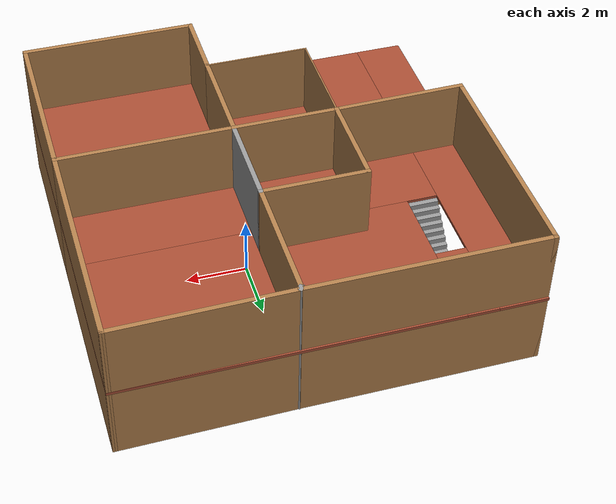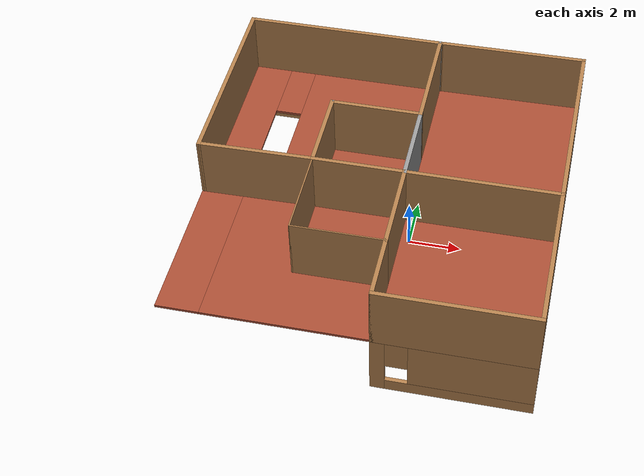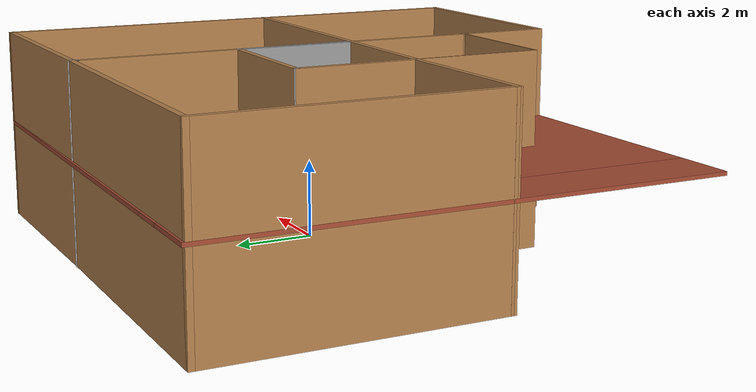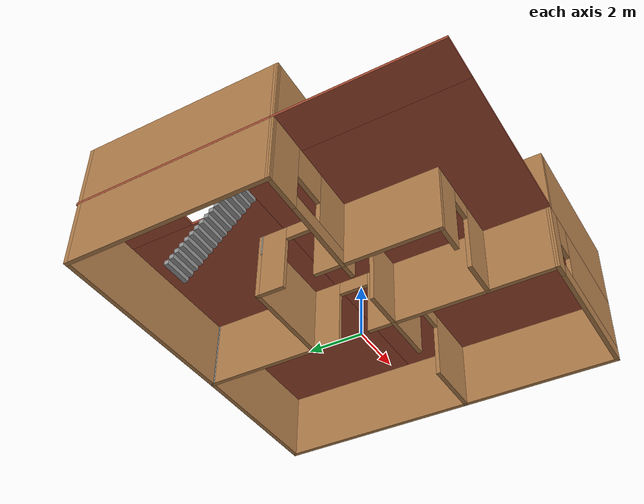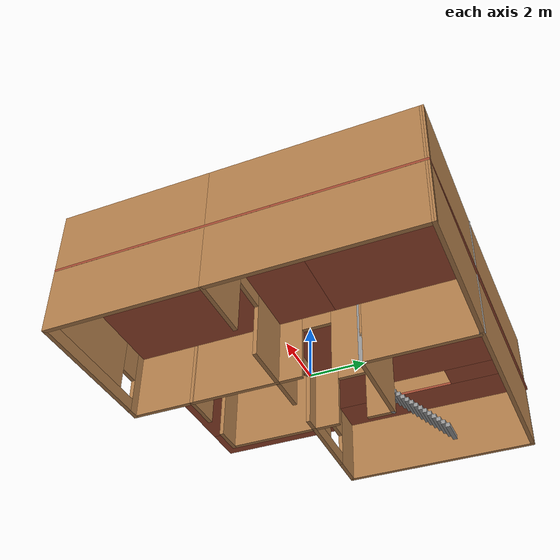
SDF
<?xml version='1.0'?>
<sdf version='1.7'>
  <model name='woodhouse'>
    <pose>-0.959793 -0.394525 0 0 -0 0</pose>
    <link name='Floor_0'>
      <pose>0.000114 -3e-06 2.5 0 -0 0</pose>
      <visual name='Floor_0_Visual_0'>
        <pose>-5.86624 0 0.05 0 -0 0</pose>
        <geometry>
          <box>
            <size>1.5695 13.2009 0.1</size>
          </box>
        </geometry>
        <material>
          <script>
            <uri>file://media/materials/scripts/gazebo.material</uri>
            <name>Gazebo/Bricks</name>
          </script>
          <ambient>1 1 1 1</ambient>
        </material>
        <meta>
          <layer>1</layer>
        </meta>
      </visual>
      <collision name='Floor_0_Collision_0'>
        <geometry>
          <box>
            <size>1.5695 13.2009 0.1</size>
          </box>
        </geometry>
        <pose>-5.86624 0 0.05 0 -0 0</pose>
      </collision>
      <visual name='Floor_0_Visual_1'>
        <pose>0.78475 -2.5953 0.05 0 -0 0</pose>
        <geometry>
          <box>
            <size>11.7325 8.01025 0.1</size>
          </box>
        </geometry>
        <material>
          <script>
            <uri>file://media/materials/scripts/gazebo.material</uri>
            <name>Gazebo/Bricks</name>
          </script>
          <ambient>1 1 1 1</ambient>
        </material>
        <meta>
          <layer>1</layer>
        </meta>
      </visual>
      <collision name='Floor_0_Collision_1'>
        <geometry>
          <box>
            <size>11.7325 8.01025 0.1</size>
          </box>
        </geometry>
        <pose>0.78475 -2.5953 0.05 0 -0 0</pose>
      </collision>
      <visual name='Floor_0_Visual_2'>
        <pose>1.28475 4.00513 0.05 0 -0 0</pose>
        <geometry>
          <box>
            <size>10.7325 5.1906 0.1</size>
          </box>
        </geometry>
        <material>
          <script>
            <uri>file://media/materials/scripts/gazebo.material</uri>
            <name>Gazebo/Bricks</name>
          </script>
          <ambient>1 1 1 1</ambient>
        </material>
        <meta>
          <layer>1</layer>
        </meta>
      </visual>
      <collision name='Floor_0_Collision_2'>
        <geometry>
          <box>
            <size>10.7325 5.1906 0.1</size>
          </box>
        </geometry>
        <pose>1.28475 4.00513 0.05 0 -0 0</pose>
      </collision>
      <visual name='Floor_0_Visual_3'>
        <pose>-4.58149 5.25513 0.05 0 -0 0</pose>
        <geometry>
          <box>
            <size>1 2.6906 0.1</size>
          </box>
        </geometry>
        <material>
          <script>
            <uri>file://media/materials/scripts/gazebo.material</uri>
            <name>Gazebo/Bricks</name>
          </script>
          <ambient>1 1 1 1</ambient>
        </material>
        <meta>
          <layer>1</layer>
        </meta>
      </visual>
      <collision name='Floor_0_Collision_3'>
        <geometry>
          <box>
            <size>1 2.6906 0.1</size>
          </box>
        </geometry>
        <pose>-4.58149 5.25513 0.05 0 -0 0</pose>
      </collision>
    </link>
    <link name='Stairs_0'>
      <visual name='Stairs_0_Visual_0'>
        <pose>-4.58138 3.82649 0.083333 0 -0 0</pose>
        <geometry>
          <box>
            <size>1 0.166667 0.166667</size>
          </box>
        </geometry>
        <material>
          <script>
            <uri>file://media/materials/scripts/gazebo.material</uri>
            <name>Gazebo/Grey</name>
          </script>
          <ambient>1 1 1 1</ambient>
        </material>
        <meta>
          <layer>0</layer>
        </meta>
      </visual>
      <collision name='Stairs_0_Collision_0'>
        <geometry>
          <box>
            <size>1 0.166667 0.166667</size>
          </box>
        </geometry>
        <pose>-4.58138 3.82649 0.083333 0 -0 0</pose>
      </collision>
      <visual name='Stairs_0_Visual_1'>
        <pose>-4.58138 3.65983 0.25 0 -0 0</pose>
        <geometry>
          <box>
            <size>1 0.166667 0.166667</size>
          </box>
        </geometry>
        <material>
          <script>
            <uri>file://media/materials/scripts/gazebo.material</uri>
            <name>Gazebo/Grey</name>
          </script>
          <ambient>1 1 1 1</ambient>
        </material>
        <meta>
          <layer>0</layer>
        </meta>
      </visual>
      <collision name='Stairs_0_Collision_1'>
        <geometry>
          <box>
            <size>1 0.166667 0.166667</size>
          </box>
        </geometry>
        <pose>-4.58138 3.65983 0.25 0 -0 0</pose>
      </collision>
      <visual name='Stairs_0_Visual_2'>
        <pose>-4.58138 3.49316 0.416667 0 -0 0</pose>
        <geometry>
          <box>
            <size>1 0.166667 0.166667</size>
          </box>
        </geometry>
        <material>
          <script>
            <uri>file://media/materials/scripts/gazebo.material</uri>
            <name>Gazebo/Grey</name>
          </script>
          <ambient>1 1 1 1</ambient>
        </material>
        <meta>
          <layer>0</layer>
        </meta>
      </visual>
      <collision name='Stairs_0_Collision_2'>
        <geometry>
          <box>
            <size>1 0.166667 0.166667</size>
          </box>
        </geometry>
        <pose>-4.58138 3.49316 0.416667 0 -0 0</pose>
      </collision>
      <visual name='Stairs_0_Visual_3'>
        <pose>-4.58138 3.32649 0.583333 0 -0 0</pose>
        <geometry>
          <box>
            <size>1 0.166667 0.166667</size>
          </box>
        </geometry>
        <material>
          <script>
            <uri>file://media/materials/scripts/gazebo.material</uri>
            <name>Gazebo/Grey</name>
          </script>
          <ambient>1 1 1 1</ambient>
        </material>
        <meta>
          <layer>0</layer>
        </meta>
      </visual>
      <collision name='Stairs_0_Collision_3'>
        <geometry>
          <box>
            <size>1 0.166667 0.166667</size>
          </box>
        </geometry>
        <pose>-4.58138 3.32649 0.583333 0 -0 0</pose>
      </collision>
      <visual name='Stairs_0_Visual_4'>
        <pose>-4.58138 3.15983 0.75 0 -0 0</pose>
        <geometry>
          <box>
            <size>1 0.166667 0.166667</size>
          </box>
        </geometry>
        <material>
          <script>
            <uri>file://media/materials/scripts/gazebo.material</uri>
            <name>Gazebo/Grey</name>
          </script>
          <ambient>1 1 1 1</ambient>
        </material>
        <meta>
          <layer>0</layer>
        </meta>
      </visual>
      <collision name='Stairs_0_Collision_4'>
        <geometry>
          <box>
            <size>1 0.166667 0.166667</size>
          </box>
        </geometry>
        <pose>-4.58138 3.15983 0.75 0 -0 0</pose>
      </collision>
      <visual name='Stairs_0_Visual_5'>
        <pose>-4.58138 2.99316 0.916667 0 -0 0</pose>
        <geometry>
          <box>
            <size>1 0.166667 0.166667</size>
          </box>
        </geometry>
        <material>
          <script>
            <uri>file://media/materials/scripts/gazebo.material</uri>
            <name>Gazebo/Grey</name>
          </script>
          <ambient>1 1 1 1</ambient>
        </material>
        <meta>
          <layer>0</layer>
        </meta>
      </visual>
      <collision name='Stairs_0_Collision_5'>
        <geometry>
          <box>
            <size>1 0.166667 0.166667</size>
          </box>
        </geometry>
        <pose>-4.58138 2.99316 0.916667 0 -0 0</pose>
      </collision>
      <visual name='Stairs_0_Visual_6'>
        <pose>-4.58138 2.82649 1.08333 0 -0 0</pose>
        <geometry>
          <box>
            <size>1 0.166667 0.166667</size>
          </box>
        </geometry>
        <material>
          <script>
            <uri>file://media/materials/scripts/gazebo.material</uri>
            <name>Gazebo/Grey</name>
          </script>
          <ambient>1 1 1 1</ambient>
        </material>
        <meta>
          <layer>0</layer>
        </meta>
      </visual>
      <collision name='Stairs_0_Collision_6'>
        <geometry>
          <box>
            <size>1 0.166667 0.166667</size>
          </box>
        </geometry>
        <pose>-4.58138 2.82649 1.08333 0 -0 0</pose>
      </collision>
      <visual name='Stairs_0_Visual_7'>
        <pose>-4.58138 2.65983 1.25 0 -0 0</pose>
        <geometry>
          <box>
            <size>1 0.166667 0.166667</size>
          </box>
        </geometry>
        <material>
          <script>
            <uri>file://media/materials/scripts/gazebo.material</uri>
            <name>Gazebo/Grey</name>
          </script>
          <ambient>1 1 1 1</ambient>
        </material>
        <meta>
          <layer>0</layer>
        </meta>
      </visual>
      <collision name='Stairs_0_Collision_7'>
        <geometry>
          <box>
            <size>1 0.166667 0.166667</size>
          </box>
        </geometry>
        <pose>-4.58138 2.65983 1.25 0 -0 0</pose>
      </collision>
      <visual name='Stairs_0_Visual_8'>
        <pose>-4.58138 2.49316 1.41667 0 -0 0</pose>
        <geometry>
          <box>
            <size>1 0.166667 0.166667</size>
          </box>
        </geometry>
        <material>
          <script>
            <uri>file://media/materials/scripts/gazebo.material</uri>
            <name>Gazebo/Grey</name>
          </script>
          <ambient>1 1 1 1</ambient>
        </material>
        <meta>
          <layer>0</layer>
        </meta>
      </visual>
      <collision name='Stairs_0_Collision_8'>
        <geometry>
          <box>
            <size>1 0.166667 0.166667</size>
          </box>
        </geometry>
        <pose>-4.58138 2.49316 1.41667 0 -0 0</pose>
      </collision>
      <visual name='Stairs_0_Visual_9'>
        <pose>-4.58138 2.32649 1.58333 0 -0 0</pose>
        <geometry>
          <box>
            <size>1 0.166667 0.166667</size>
          </box>
        </geometry>
        <material>
          <script>
            <uri>file://media/materials/scripts/gazebo.material</uri>
            <name>Gazebo/Grey</name>
          </script>
          <ambient>1 1 1 1</ambient>
        </material>
        <meta>
          <layer>0</layer>
        </meta>
      </visual>
      <collision name='Stairs_0_Collision_9'>
        <geometry>
          <box>
            <size>1 0.166667 0.166667</size>
          </box>
        </geometry>
        <pose>-4.58138 2.32649 1.58333 0 -0 0</pose>
      </collision>
      <visual name='Stairs_0_Visual_10'>
        <pose>-4.58138 2.15983 1.75 0 -0 0</pose>
        <geometry>
          <box>
            <size>1 0.166667 0.166667</size>
          </box>
        </geometry>
        <material>
          <script>
            <uri>file://media/materials/scripts/gazebo.material</uri>
            <name>Gazebo/Grey</name>
          </script>
          <ambient>1 1 1 1</ambient>
        </material>
        <meta>
          <layer>0</layer>
        </meta>
      </visual>
      <collision name='Stairs_0_Collision_10'>
        <geometry>
          <box>
            <size>1 0.166667 0.166667</size>
          </box>
        </geometry>
        <pose>-4.58138 2.15983 1.75 0 -0 0</pose>
      </collision>
      <visual name='Stairs_0_Visual_11'>
        <pose>-4.58138 1.99316 1.91667 0 -0 0</pose>
        <geometry>
          <box>
            <size>1 0.166667 0.166667</size>
          </box>
        </geometry>
        <material>
          <script>
            <uri>file://media/materials/scripts/gazebo.material</uri>
            <name>Gazebo/Grey</name>
          </script>
          <ambient>1 1 1 1</ambient>
        </material>
        <meta>
          <layer>0</layer>
        </meta>
      </visual>
      <collision name='Stairs_0_Collision_11'>
        <geometry>
          <box>
            <size>1 0.166667 0.166667</size>
          </box>
        </geometry>
        <pose>-4.58138 1.99316 1.91667 0 -0 0</pose>
      </collision>
      <visual name='Stairs_0_Visual_12'>
        <pose>-4.58138 1.82649 2.08333 0 -0 0</pose>
        <geometry>
          <box>
            <size>1 0.166667 0.166667</size>
          </box>
        </geometry>
        <material>
          <script>
            <uri>file://media/materials/scripts/gazebo.material</uri>
            <name>Gazebo/Grey</name>
          </script>
          <ambient>1 1 1 1</ambient>
        </material>
        <meta>
          <layer>0</layer>
        </meta>
      </visual>
      <collision name='Stairs_0_Collision_12'>
        <geometry>
          <box>
            <size>1 0.166667 0.166667</size>
          </box>
        </geometry>
        <pose>-4.58138 1.82649 2.08333 0 -0 0</pose>
      </collision>
      <visual name='Stairs_0_Visual_13'>
        <pose>-4.58138 1.65983 2.25 0 -0 0</pose>
        <geometry>
          <box>
            <size>1 0.166667 0.166667</size>
          </box>
        </geometry>
        <material>
          <script>
            <uri>file://media/materials/scripts/gazebo.material</uri>
            <name>Gazebo/Grey</name>
          </script>
          <ambient>1 1 1 1</ambient>
        </material>
        <meta>
          <layer>0</layer>
        </meta>
      </visual>
      <collision name='Stairs_0_Collision_13'>
        <geometry>
          <box>
            <size>1 0.166667 0.166667</size>
          </box>
        </geometry>
        <pose>-4.58138 1.65983 2.25 0 -0 0</pose>
      </collision>
      <visual name='Stairs_0_Visual_14'>
        <pose>-4.58138 1.49316 2.41667 0 -0 0</pose>
        <geometry>
          <box>
            <size>1 0.166667 0.166667</size>
          </box>
        </geometry>
        <material>
          <script>
            <uri>file://media/materials/scripts/gazebo.material</uri>
            <name>Gazebo/Grey</name>
          </script>
          <ambient>1 1 1 1</ambient>
        </material>
        <meta>
          <layer>0</layer>
        </meta>
      </visual>
      <collision name='Stairs_0_Collision_14'>
        <geometry>
          <box>
            <size>1 0.166667 0.166667</size>
          </box>
        </geometry>
        <pose>-4.58138 1.49316 2.41667 0 -0 0</pose>
      </collision>
    </link>
    <link name='Wall_0'>
      <collision name='Wall_0_Collision'>
        <geometry>
          <box>
            <size>7.75 0.15 2.5</size>
          </box>
        </geometry>
        <pose>0 0 1.25 0 -0 0</pose>
      </collision>
      <visual name='Wall_0_Visual'>
        <pose>0 0 1.25 0 -0 0</pose>
        <geometry>
          <box>
            <size>7.75 0.15 2.5</size>
          </box>
        </geometry>
        <material>
          <script>
            <uri>file://media/materials/scripts/gazebo.material</uri>
            <name>Gazebo/Wood</name>
          </script>
          <ambient>1 1 1 1</ambient>
        </material>
        <meta>
          <layer>0</layer>
        </meta>
      </visual>
      <pose>-2.77475 6.46123 0 0 -0 0</pose>
    </link>
    <link name='Wall_1'>
      <collision name='Wall_1_Collision'>
        <geometry>
          <box>
            <size>0.25 0.15 2.5</size>
          </box>
        </geometry>
        <pose>0 0 1.25 0 -0 0</pose>
      </collision>
      <visual name='Wall_1_Visual'>
        <pose>0 0 1.25 0 -0 0</pose>
        <geometry>
          <box>
            <size>0.25 0.15 2.5</size>
          </box>
        </geometry>
        <material>
          <script>
            <uri>file://media/materials/scripts/gazebo.material</uri>
            <name>Gazebo/Grey</name>
          </script>
          <ambient>1 1 1 1</ambient>
        </material>
        <meta>
          <layer>0</layer>
        </meta>
      </visual>
      <pose>1.00025 6.41792 0 0 -0 -2.0944</pose>
    </link>
    <link name='Wall_10'>
      <pose>3.77525 -0.825377 0 0 -0 0</pose>
      <visual name='Wall_10_Visual_0'>
        <pose>-1.89321 0 1.25 0 -0 0</pose>
        <geometry>
          <box>
            <size>1.96359 0.15 2.5</size>
          </box>
        </geometry>
        <material>
          <script>
            <uri>file://media/materials/scripts/gazebo.material</uri>
            <name>Gazebo/Wood</name>
          </script>
          <ambient>1 1 1 1</ambient>
        </material>
        <meta>
          <layer>0</layer>
        </meta>
      </visual>
      <collision name='Wall_10_Collision_0'>
        <geometry>
          <box>
            <size>1.96359 0.15 2.5</size>
          </box>
        </geometry>
        <pose>-1.89321 0 1.25 0 -0 0</pose>
      </collision>
      <visual name='Wall_10_Visual_1'>
        <pose>1.68179 0 1.25 0 -0 0</pose>
        <geometry>
          <box>
            <size>2.38641 0.15 2.5</size>
          </box>
        </geometry>
        <material>
          <script>
            <uri>file://media/materials/scripts/gazebo.material</uri>
            <name>Gazebo/Wood</name>
          </script>
          <ambient>1 1 1 1</ambient>
        </material>
        <meta>
          <layer>0</layer>
        </meta>
      </visual>
      <collision name='Wall_10_Collision_1'>
        <geometry>
          <box>
            <size>2.38641 0.15 2.5</size>
          </box>
        </geometry>
        <pose>1.68179 0 1.25 0 -0 0</pose>
      </collision>
      <visual name='Wall_10_Visual_2'>
        <pose>-0.211413 0 2.25 0 -0 0</pose>
        <geometry>
          <box>
            <size>1.4 0.15 0.5</size>
          </box>
        </geometry>
        <material>
          <script>
            <uri>file://media/materials/scripts/gazebo.material</uri>
            <name>Gazebo/Wood</name>
          </script>
          <ambient>1 1 1 1</ambient>
        </material>
        <meta>
          <layer>0</layer>
        </meta>
      </visual>
      <collision name='Wall_10_Collision_2'>
        <geometry>
          <box>
            <size>1.4 0.15 0.5</size>
          </box>
        </geometry>
        <pose>-0.211413 0 2.25 0 -0 0</pose>
      </collision>
    </link>
    <link name='Wall_11'>
      <collision name='Wall_11_Collision'>
        <geometry>
          <box>
            <size>7.5 0.15 2.5</size>
          </box>
        </geometry>
        <pose>0 0 1.25 0 -0 0</pose>
      </collision>
      <visual name='Wall_11_Visual'>
        <pose>0 0 1.25 0 -0 0</pose>
        <geometry>
          <box>
            <size>7.5 0.15 2.5</size>
          </box>
        </geometry>
        <material>
          <script>
            <uri>file://media/materials/scripts/gazebo.material</uri>
            <name>Gazebo/Wood</name>
          </script>
          <ambient>1 1 1 1</ambient>
        </material>
        <meta>
          <layer>0</layer>
        </meta>
      </visual>
      <pose>6.57525 2.84962 0 0 -0 1.5708</pose>
    </link>
    <link name='Wall_12'>
      <collision name='Wall_12_Collision'>
        <geometry>
          <box>
            <size>5.70036 0.15 2.5</size>
          </box>
        </geometry>
        <pose>0 0 1.25 0 -0 0</pose>
      </collision>
      <visual name='Wall_12_Visual'>
        <pose>0 0 1.25 0 -0 0</pose>
        <geometry>
          <box>
            <size>5.70036 0.15 2.5</size>
          </box>
        </geometry>
        <material>
          <script>
            <uri>file://media/materials/scripts/gazebo.material</uri>
            <name>Gazebo/Wood</name>
          </script>
          <ambient>1 1 1 1</ambient>
        </material>
        <meta>
          <layer>0</layer>
        </meta>
      </visual>
      <pose>3.80025 6.49292 0 0 -0 -3.13017</pose>
    </link>
    <link name='Wall_14'>
      <collision name='Wall_14_Collision'>
        <geometry>
          <box>
            <size>7.5 0.15 2.5</size>
          </box>
        </geometry>
        <pose>0 0 1.25 0 -0 0</pose>
      </collision>
      <visual name='Wall_14_Visual'>
        <pose>0 0 1.25 0 -0 0</pose>
        <geometry>
          <box>
            <size>7.5 0.15 2.5</size>
          </box>
        </geometry>
        <material>
          <script>
            <uri>file://media/materials/scripts/gazebo.material</uri>
            <name>Gazebo/Wood</name>
          </script>
          <ambient>1 1 1 1</ambient>
        </material>
        <meta>
          <layer>0</layer>
        </meta>
      </visual>
      <pose>-6.57475 2.78623 0 0 -0 -1.5708</pose>
    </link>
    <link name='Wall_15'>
      <pose>-4.47475 -0.857076 0 0 -0 0.015093</pose>
      <visual name='Wall_15_Visual_0'>
        <pose>-1.45646 0 1.25 0 -0 0</pose>
        <geometry>
          <box>
            <size>1.43755 0.15 2.5</size>
          </box>
        </geometry>
        <material>
          <script>
            <uri>file://media/materials/scripts/gazebo.material</uri>
            <name>Gazebo/Wood</name>
          </script>
          <ambient>1 1 1 1</ambient>
        </material>
        <meta>
          <layer>0</layer>
        </meta>
      </visual>
      <collision name='Wall_15_Collision_0'>
        <geometry>
          <box>
            <size>1.43755 0.15 2.5</size>
          </box>
        </geometry>
        <pose>-1.45646 0 1.25 0 -0 0</pose>
      </collision>
      <visual name='Wall_15_Visual_1'>
        <pose>0.718775 0 0.25 0 -0 0</pose>
        <geometry>
          <box>
            <size>2.91293 0.15 0.5</size>
          </box>
        </geometry>
        <material>
          <script>
            <uri>file://media/materials/scripts/gazebo.material</uri>
            <name>Gazebo/Wood</name>
          </script>
          <ambient>1 1 1 1</ambient>
        </material>
        <meta>
          <layer>0</layer>
        </meta>
      </visual>
      <collision name='Wall_15_Collision_1'>
        <geometry>
          <box>
            <size>2.91293 0.15 0.5</size>
          </box>
        </geometry>
        <pose>0.718775 0 0.25 0 -0 0</pose>
      </collision>
      <visual name='Wall_15_Visual_2'>
        <pose>1.36878 0 1.5 0 -0 0</pose>
        <geometry>
          <box>
            <size>1.61293 0.15 2</size>
          </box>
        </geometry>
        <material>
          <script>
            <uri>file://media/materials/scripts/gazebo.material</uri>
            <name>Gazebo/Wood</name>
          </script>
          <ambient>1 1 1 1</ambient>
        </material>
        <meta>
          <layer>0</layer>
        </meta>
      </visual>
      <collision name='Wall_15_Collision_2'>
        <geometry>
          <box>
            <size>1.61293 0.15 2</size>
          </box>
        </geometry>
        <pose>1.36878 0 1.5 0 -0 0</pose>
      </collision>
      <visual name='Wall_15_Visual_3'>
        <pose>-0.087689 0 1.9 0 -0 0</pose>
        <geometry>
          <box>
            <size>1.3 0.15 1.2</size>
          </box>
        </geometry>
        <material>
          <script>
            <uri>file://media/materials/scripts/gazebo.material</uri>
            <name>Gazebo/Wood</name>
          </script>
          <ambient>1 1 1 1</ambient>
        </material>
        <meta>
          <layer>0</layer>
        </meta>
      </visual>
      <collision name='Wall_15_Collision_3'>
        <geometry>
          <box>
            <size>1.3 0.15 1.2</size>
          </box>
        </geometry>
        <pose>-0.087689 0 1.9 0 -0 0</pose>
      </collision>
    </link>
    <link name='Wall_17'>
      <collision name='Wall_17_Collision'>
        <geometry>
          <box>
            <size>3.5 0.15 2.5</size>
          </box>
        </geometry>
        <pose>0 0 1.25 0 -0 0</pose>
      </collision>
      <visual name='Wall_17_Visual'>
        <pose>0 0 1.25 0 -0 0</pose>
        <geometry>
          <box>
            <size>3.5 0.15 2.5</size>
          </box>
        </geometry>
        <material>
          <script>
            <uri>file://media/materials/scripts/gazebo.material</uri>
            <name>Gazebo/Wood</name>
          </script>
          <ambient>1 1 1 1</ambient>
        </material>
        <meta>
          <layer>0</layer>
        </meta>
      </visual>
      <pose>-2.37475 -2.50038 0 0 -0 -1.5708</pose>
    </link>
    <link name='Wall_18'>
      <pose>-0.699751 -4.17538 0 0 -0 0</pose>
      <visual name='Wall_18_Visual_0'>
        <pose>-1.1788 0 1.25 0 -0 0</pose>
        <geometry>
          <box>
            <size>1.1424 0.15 2.5</size>
          </box>
        </geometry>
        <material>
          <script>
            <uri>file://media/materials/scripts/gazebo.material</uri>
            <name>Gazebo/Wood</name>
          </script>
          <ambient>1 1 1 1</ambient>
        </material>
        <meta>
          <layer>0</layer>
        </meta>
      </visual>
      <collision name='Wall_18_Collision_0'>
        <geometry>
          <box>
            <size>1.1424 0.15 2.5</size>
          </box>
        </geometry>
        <pose>-1.1788 0 1.25 0 -0 0</pose>
      </collision>
      <visual name='Wall_18_Visual_1'>
        <pose>1.0212 0 1.25 0 -0 0</pose>
        <geometry>
          <box>
            <size>1.45759 0.15 2.5</size>
          </box>
        </geometry>
        <material>
          <script>
            <uri>file://media/materials/scripts/gazebo.material</uri>
            <name>Gazebo/Wood</name>
          </script>
          <ambient>1 1 1 1</ambient>
        </material>
        <meta>
          <layer>0</layer>
        </meta>
      </visual>
      <collision name='Wall_18_Collision_1'>
        <geometry>
          <box>
            <size>1.45759 0.15 2.5</size>
          </box>
        </geometry>
        <pose>1.0212 0 1.25 0 -0 0</pose>
      </collision>
      <visual name='Wall_18_Visual_2'>
        <pose>-0.157595 0 2.25 0 -0 0</pose>
        <geometry>
          <box>
            <size>0.9 0.15 0.5</size>
          </box>
        </geometry>
        <material>
          <script>
            <uri>file://media/materials/scripts/gazebo.material</uri>
            <name>Gazebo/Wood</name>
          </script>
          <ambient>1 1 1 1</ambient>
        </material>
        <meta>
          <layer>0</layer>
        </meta>
      </visual>
      <collision name='Wall_18_Collision_2'>
        <geometry>
          <box>
            <size>0.9 0.15 0.5</size>
          </box>
        </geometry>
        <pose>-0.157595 0 2.25 0 -0 0</pose>
      </collision>
    </link>
    <link name='Wall_19'>
      <collision name='Wall_19_Collision'>
        <geometry>
          <box>
            <size>3.5 0.15 2.5</size>
          </box>
        </geometry>
        <pose>0 0 1.25 0 -0 0</pose>
      </collision>
      <visual name='Wall_19_Visual'>
        <pose>0 0 1.25 0 -0 0</pose>
        <geometry>
          <box>
            <size>3.5 0.15 2.5</size>
          </box>
        </geometry>
        <material>
          <script>
            <uri>file://media/materials/scripts/gazebo.material</uri>
            <name>Gazebo/Wood</name>
          </script>
          <ambient>1 1 1 1</ambient>
        </material>
        <meta>
          <layer>0</layer>
        </meta>
      </visual>
      <pose>0.975249 -2.50038 0 0 -0 1.5708</pose>
    </link>
    <link name='Wall_2'>
      <collision name='Wall_2_Collision'>
        <geometry>
          <box>
            <size>4.25 0.15 2.5</size>
          </box>
        </geometry>
        <pose>0 0 1.25 0 -0 0</pose>
      </collision>
      <visual name='Wall_2_Visual'>
        <pose>0 0 1.25 0 -0 0</pose>
        <geometry>
          <box>
            <size>4.25 0.15 2.5</size>
          </box>
        </geometry>
        <material>
          <script>
            <uri>file://media/materials/scripts/gazebo.material</uri>
            <name>Gazebo/Wood</name>
          </script>
          <ambient>1 1 1 1</ambient>
        </material>
        <meta>
          <layer>0</layer>
        </meta>
      </visual>
      <pose>0.975249 4.32462 0 0 -0 -1.5708</pose>
    </link>
    <link name='Wall_27'>
      <collision name='Wall_27_Collision'>
        <geometry>
          <box>
            <size>2.5 0.15 2.5</size>
          </box>
        </geometry>
        <pose>0 0 1.25 0 -0 0</pose>
      </collision>
      <visual name='Wall_27_Visual'>
        <pose>0 0 1.25 0 -0 0</pose>
        <geometry>
          <box>
            <size>2.5 0.15 2.5</size>
          </box>
        </geometry>
        <material>
          <script>
            <uri>file://media/materials/scripts/gazebo.material</uri>
            <name>Gazebo/Wood</name>
          </script>
          <ambient>1 1 1 1</ambient>
        </material>
        <meta>
          <layer>0</layer>
        </meta>
      </visual>
      <pose>0.975021 -5.35043 0 0 -0 -1.57099</pose>
    </link>
    <link name='Wall_28'>
      <pose>3.77479 -6.52548 0 0 -0 0</pose>
      <visual name='Wall_28_Visual_0'>
        <pose>-2.61222 0 1.25 0 -0 0</pose>
        <geometry>
          <box>
            <size>0.525555 0.15 2.5</size>
          </box>
        </geometry>
        <material>
          <script>
            <uri>file://media/materials/scripts/gazebo.material</uri>
            <name>Gazebo/Wood</name>
          </script>
          <ambient>0.760784 0.662745 0.627451 1</ambient>
        </material>
        <meta>
          <layer>0</layer>
        </meta>
      </visual>
      <collision name='Wall_28_Collision_0'>
        <geometry>
          <box>
            <size>0.525555 0.15 2.5</size>
          </box>
        </geometry>
        <pose>-2.61222 0 1.25 0 -0 0</pose>
      </collision>
      <visual name='Wall_28_Visual_1'>
        <pose>0.262778 0 0.25 0 -0 0</pose>
        <geometry>
          <box>
            <size>5.22445 0.15 0.5</size>
          </box>
        </geometry>
        <material>
          <script>
            <uri>file://media/materials/scripts/gazebo.material</uri>
            <name>Gazebo/Wood</name>
          </script>
          <ambient>0.760784 0.662745 0.627451 1</ambient>
        </material>
        <meta>
          <layer>0</layer>
        </meta>
      </visual>
      <collision name='Wall_28_Collision_1'>
        <geometry>
          <box>
            <size>5.22445 0.15 0.5</size>
          </box>
        </geometry>
        <pose>0.262778 0 0.25 0 -0 0</pose>
      </collision>
      <visual name='Wall_28_Visual_2'>
        <pose>0.662778 0 1.5 0 -0 0</pose>
        <geometry>
          <box>
            <size>4.42445 0.15 2</size>
          </box>
        </geometry>
        <material>
          <script>
            <uri>file://media/materials/scripts/gazebo.material</uri>
            <name>Gazebo/Wood</name>
          </script>
          <ambient>0.760784 0.662745 0.627451 1</ambient>
        </material>
        <meta>
          <layer>0</layer>
        </meta>
      </visual>
      <collision name='Wall_28_Collision_2'>
        <geometry>
          <box>
            <size>4.42445 0.15 2</size>
          </box>
        </geometry>
        <pose>0.662778 0 1.5 0 -0 0</pose>
      </collision>
      <visual name='Wall_28_Visual_3'>
        <pose>-1.94945 0 1.9 0 -0 0</pose>
        <geometry>
          <box>
            <size>0.8 0.15 1.2</size>
          </box>
        </geometry>
        <material>
          <script>
            <uri>file://media/materials/scripts/gazebo.material</uri>
            <name>Gazebo/Wood</name>
          </script>
          <ambient>0.760784 0.662745 0.627451 1</ambient>
        </material>
        <meta>
          <layer>0</layer>
        </meta>
      </visual>
      <collision name='Wall_28_Collision_3'>
        <geometry>
          <box>
            <size>0.8 0.15 1.2</size>
          </box>
        </geometry>
        <pose>-1.94945 0 1.9 0 -0 0</pose>
      </collision>
    </link>
    <link name='Wall_29'>
      <collision name='Wall_29_Collision'>
        <geometry>
          <box>
            <size>5.85 0.15 2.5</size>
          </box>
        </geometry>
        <pose>0 0 1.25 0 -0 0</pose>
      </collision>
      <visual name='Wall_29_Visual'>
        <pose>0 0 1.25 0 -0 0</pose>
        <geometry>
          <box>
            <size>5.85 0.15 2.5</size>
          </box>
        </geometry>
        <material>
          <script>
            <uri>file://media/materials/scripts/gazebo.material</uri>
            <name>Gazebo/Wood</name>
          </script>
          <ambient>1 1 1 1</ambient>
        </material>
        <meta>
          <layer>0</layer>
        </meta>
      </visual>
      <pose>6.57502 -3.67543 0 0 -0 1.57072</pose>
    </link>
    <link name='Wall_3'>
      <collision name='Wall_3_Collision'>
        <geometry>
          <box>
            <size>0.15 0.15 2.5</size>
          </box>
        </geometry>
        <pose>0 0 1.25 0 -0 0</pose>
      </collision>
      <visual name='Wall_3_Visual'>
        <pose>0 0 1.25 0 -0 0</pose>
        <geometry>
          <box>
            <size>0.15 0.15 2.5</size>
          </box>
        </geometry>
        <material>
          <script>
            <uri>file://media/materials/scripts/gazebo.material</uri>
            <name>Gazebo/Grey</name>
          </script>
          <ambient>1 1 1 1</ambient>
        </material>
        <meta>
          <layer>0</layer>
        </meta>
      </visual>
      <pose>0.975249 2.27462 0 0 -0 0</pose>
    </link>
    <link name='Wall_31'>
      <collision name='Wall_31_Collision'>
        <geometry>
          <box>
            <size>7.75 0.15 2.5</size>
          </box>
        </geometry>
        <pose>0 0 1.25 0 -0 0</pose>
      </collision>
      <visual name='Wall_31_Visual'>
        <pose>0 0 1.25 0 -0 0</pose>
        <geometry>
          <box>
            <size>7.75 0.15 2.5</size>
          </box>
        </geometry>
        <material>
          <script>
            <uri>file://media/materials/scripts/gazebo.material</uri>
            <name>Gazebo/Wood</name>
          </script>
          <ambient>1 1 1 1</ambient>
        </material>
        <meta>
          <layer>1</layer>
        </meta>
      </visual>
      <pose>-2.77475 6.46123 2.5 0 -0 0</pose>
    </link>
    <link name='Wall_32'>
      <collision name='Wall_32_Collision'>
        <geometry>
          <box>
            <size>0.25 0.15 2.5</size>
          </box>
        </geometry>
        <pose>0 0 1.25 0 -0 0</pose>
      </collision>
      <visual name='Wall_32_Visual'>
        <pose>0 0 1.25 0 -0 0</pose>
        <geometry>
          <box>
            <size>0.25 0.15 2.5</size>
          </box>
        </geometry>
        <material>
          <script>
            <uri>file://media/materials/scripts/gazebo.material</uri>
            <name>Gazebo/Grey</name>
          </script>
          <ambient>1 1 1 1</ambient>
        </material>
        <meta>
          <layer>1</layer>
        </meta>
      </visual>
      <pose>1.00025 6.41793 2.5 0 -0 -2.0944</pose>
    </link>
    <link name='Wall_33'>
      <collision name='Wall_33_Collision'>
        <geometry>
          <box>
            <size>4.25 0.15 2.5</size>
          </box>
        </geometry>
        <pose>0 0 1.25 0 -0 0</pose>
      </collision>
      <visual name='Wall_33_Visual'>
        <pose>0 0 1.25 0 -0 0</pose>
        <geometry>
          <box>
            <size>4.25 0.15 2.5</size>
          </box>
        </geometry>
        <material>
          <script>
            <uri>file://media/materials/scripts/gazebo.material</uri>
            <name>Gazebo/Wood</name>
          </script>
          <ambient>1 1 1 1</ambient>
        </material>
        <meta>
          <layer>1</layer>
        </meta>
      </visual>
      <pose>0.975249 4.32462 2.5 0 -0 -1.5708</pose>
    </link>
    <link name='Wall_34'>
      <collision name='Wall_34_Collision'>
        <geometry>
          <box>
            <size>0.15 0.15 2.5</size>
          </box>
        </geometry>
        <pose>0 0 1.25 0 -0 0</pose>
      </collision>
      <visual name='Wall_34_Visual'>
        <pose>0 0 1.25 0 -0 0</pose>
        <geometry>
          <box>
            <size>0.15 0.15 2.5</size>
          </box>
        </geometry>
        <material>
          <script>
            <uri>file://media/materials/scripts/gazebo.material</uri>
            <name>Gazebo/Grey</name>
          </script>
          <ambient>1 1 1 1</ambient>
        </material>
        <meta>
          <layer>1</layer>
        </meta>
      </visual>
      <pose>0.975249 2.27462 2.5 0 -0 0</pose>
    </link>
    <link name='Wall_35'>
      <collision name='Wall_35_Collision'>
        <geometry>
          <box>
            <size>3.5 0.15 2.5</size>
          </box>
        </geometry>
        <pose>0 0 1.25 0 -0 0</pose>
      </collision>
      <visual name='Wall_35_Visual'>
        <pose>0 0 1.25 0 -0 0</pose>
        <geometry>
          <box>
            <size>3.5 0.15 2.5</size>
          </box>
        </geometry>
        <material>
          <script>
            <uri>file://media/materials/scripts/gazebo.material</uri>
            <name>Gazebo/Wood</name>
          </script>
          <ambient>1 1 1 1</ambient>
        </material>
        <meta>
          <layer>1</layer>
        </meta>
      </visual>
      <pose>-0.699751 2.27462 2.5 0 -0 3.14159</pose>
    </link>
    <link name='Wall_36'>
      <collision name='Wall_36_Collision'>
        <geometry>
          <box>
            <size>0.15 0.15 2.5</size>
          </box>
        </geometry>
        <pose>0 0 1.25 0 -0 0</pose>
      </collision>
      <visual name='Wall_36_Visual'>
        <pose>0 0 1.25 0 -0 0</pose>
        <geometry>
          <box>
            <size>0.15 0.15 2.5</size>
          </box>
        </geometry>
        <material>
          <script>
            <uri>file://media/materials/scripts/gazebo.material</uri>
            <name>Gazebo/Grey</name>
          </script>
          <ambient>1 1 1 1</ambient>
        </material>
        <meta>
          <layer>1</layer>
        </meta>
      </visual>
      <pose>-2.37475 2.27462 2.5 0 -0 0</pose>
    </link>
    <link name='Wall_37'>
      <collision name='Wall_37_Collision'>
        <geometry>
          <box>
            <size>3.25 0.15 2.5</size>
          </box>
        </geometry>
        <pose>0 0 1.25 0 -0 0</pose>
      </collision>
      <visual name='Wall_37_Visual'>
        <pose>0 0 1.25 0 -0 0</pose>
        <geometry>
          <box>
            <size>3.25 0.15 2.5</size>
          </box>
        </geometry>
        <material>
          <script>
            <uri>file://media/materials/scripts/gazebo.material</uri>
            <name>Gazebo/Wood</name>
          </script>
          <ambient>1 1 1 1</ambient>
        </material>
        <meta>
          <layer>1</layer>
        </meta>
      </visual>
      <pose>-2.37498 0.724574 2.5 0 -0 -1.57094</pose>
    </link>
    <link name='Wall_38'>
      <collision name='Wall_38_Collision'>
        <geometry>
          <box>
            <size>3.5 0.15 2.5</size>
          </box>
        </geometry>
        <pose>0 0 1.25 0 -0 0</pose>
      </collision>
      <visual name='Wall_38_Visual'>
        <pose>0 0 1.25 0 -0 0</pose>
        <geometry>
          <box>
            <size>3.5 0.15 2.5</size>
          </box>
        </geometry>
        <material>
          <script>
            <uri>file://media/materials/scripts/gazebo.material</uri>
            <name>Gazebo/Wood</name>
          </script>
          <ambient>1 1 1 1</ambient>
        </material>
        <meta>
          <layer>1</layer>
        </meta>
      </visual>
      <pose>-0.699979 -0.825426 2.5 0 -0 2.9e-05</pose>
    </link>
    <link name='Wall_39'>
      <collision name='Wall_39_Collision'>
        <geometry>
          <box>
            <size>3.25 0.15 2.5</size>
          </box>
        </geometry>
        <pose>0 0 1.25 0 -0 0</pose>
      </collision>
      <visual name='Wall_39_Visual'>
        <pose>0 0 1.25 0 -0 0</pose>
        <geometry>
          <box>
            <size>3.25 0.15 2.5</size>
          </box>
        </geometry>
        <material>
          <script>
            <uri>file://media/materials/scripts/gazebo.material</uri>
            <name>Gazebo/Grey</name>
          </script>
          <ambient>1 1 1 1</ambient>
        </material>
        <meta>
          <layer>1</layer>
        </meta>
      </visual>
      <pose>0.975249 0.724623 2.5 0 -0 1.5708</pose>
    </link>
    <link name='Wall_4'>
      <collision name='Wall_4_Collision'>
        <geometry>
          <box>
            <size>3.5 0.15 2.5</size>
          </box>
        </geometry>
        <pose>0 0 1.25 0 -0 0</pose>
      </collision>
      <visual name='Wall_4_Visual'>
        <pose>0 0 1.25 0 -0 0</pose>
        <geometry>
          <box>
            <size>3.5 0.15 2.5</size>
          </box>
        </geometry>
        <material>
          <script>
            <uri>file://media/materials/scripts/gazebo.material</uri>
            <name>Gazebo/Wood</name>
          </script>
          <ambient>1 1 1 1</ambient>
        </material>
        <meta>
          <layer>0</layer>
        </meta>
      </visual>
      <pose>-0.699751 2.27462 0 0 -0 3.14159</pose>
    </link>
    <link name='Wall_40'>
      <collision name='Wall_40_Collision'>
        <geometry>
          <box>
            <size>5.75 0.15 2.5</size>
          </box>
        </geometry>
        <pose>0 0 1.25 0 -0 0</pose>
      </collision>
      <visual name='Wall_40_Visual'>
        <pose>0 0 1.25 0 -0 0</pose>
        <geometry>
          <box>
            <size>5.75 0.15 2.5</size>
          </box>
        </geometry>
        <material>
          <script>
            <uri>file://media/materials/scripts/gazebo.material</uri>
            <name>Gazebo/Wood</name>
          </script>
          <ambient>1 1 1 1</ambient>
        </material>
        <meta>
          <layer>1</layer>
        </meta>
      </visual>
      <pose>3.77525 -0.825377 2.5 0 -0 0</pose>
    </link>
    <link name='Wall_41'>
      <collision name='Wall_41_Collision'>
        <geometry>
          <box>
            <size>7.5 0.15 2.5</size>
          </box>
        </geometry>
        <pose>0 0 1.25 0 -0 0</pose>
      </collision>
      <visual name='Wall_41_Visual'>
        <pose>0 0 1.25 0 -0 0</pose>
        <geometry>
          <box>
            <size>7.5 0.15 2.5</size>
          </box>
        </geometry>
        <material>
          <script>
            <uri>file://media/materials/scripts/gazebo.material</uri>
            <name>Gazebo/Wood</name>
          </script>
          <ambient>1 1 1 1</ambient>
        </material>
        <meta>
          <layer>1</layer>
        </meta>
      </visual>
      <pose>6.57525 2.84962 2.5 0 -0 1.5708</pose>
    </link>
    <link name='Wall_42'>
      <collision name='Wall_42_Collision'>
        <geometry>
          <box>
            <size>5.70036 0.15 2.5</size>
          </box>
        </geometry>
        <pose>0 0 1.25 0 -0 0</pose>
      </collision>
      <visual name='Wall_42_Visual'>
        <pose>0 0 1.25 0 -0 0</pose>
        <geometry>
          <box>
            <size>5.70036 0.15 2.5</size>
          </box>
        </geometry>
        <material>
          <script>
            <uri>file://media/materials/scripts/gazebo.material</uri>
            <name>Gazebo/Wood</name>
          </script>
          <ambient>1 1 1 1</ambient>
        </material>
        <meta>
          <layer>1</layer>
        </meta>
      </visual>
      <pose>3.80025 6.49292 2.5 0 -0 -3.13017</pose>
    </link>
    <link name='Wall_43'>
      <collision name='Wall_43_Collision'>
        <geometry>
          <box>
            <size>7.5 0.15 2.5</size>
          </box>
        </geometry>
        <pose>0 0 1.25 0 -0 0</pose>
      </collision>
      <visual name='Wall_43_Visual'>
        <pose>0 0 1.25 0 -0 0</pose>
        <geometry>
          <box>
            <size>7.5 0.15 2.5</size>
          </box>
        </geometry>
        <material>
          <script>
            <uri>file://media/materials/scripts/gazebo.material</uri>
            <name>Gazebo/Wood</name>
          </script>
          <ambient>1 1 1 1</ambient>
        </material>
        <meta>
          <layer>1</layer>
        </meta>
      </visual>
      <pose>-6.57475 2.78623 2.5 0 -0 -1.5708</pose>
    </link>
    <link name='Wall_44'>
      <collision name='Wall_44_Collision'>
        <geometry>
          <box>
            <size>4.35048 0.15 2.5</size>
          </box>
        </geometry>
        <pose>0 0 1.25 0 -0 0</pose>
      </collision>
      <visual name='Wall_44_Visual'>
        <pose>0 0 1.25 0 -0 0</pose>
        <geometry>
          <box>
            <size>4.35048 0.15 2.5</size>
          </box>
        </geometry>
        <material>
          <script>
            <uri>file://media/materials/scripts/gazebo.material</uri>
            <name>Gazebo/Wood</name>
          </script>
          <ambient>1 1 1 1</ambient>
        </material>
        <meta>
          <layer>1</layer>
        </meta>
      </visual>
      <pose>-4.47498 -0.857125 2.5 0 -0 0.015072</pose>
    </link>
    <link name='Wall_45'>
      <collision name='Wall_45_Collision'>
        <geometry>
          <box>
            <size>3.4 0.05 2.5</size>
          </box>
        </geometry>
        <pose>0 0 1.25 0 -0 0</pose>
      </collision>
      <visual name='Wall_45_Visual'>
        <pose>0 0 1.25 0 -0 0</pose>
        <geometry>
          <box>
            <size>3.4 0.05 2.5</size>
          </box>
        </geometry>
        <material>
          <script>
            <uri>file://media/materials/scripts/gazebo.material</uri>
            <name>Gazebo/Wood</name>
          </script>
          <ambient>1 1 1 1</ambient>
        </material>
        <meta>
          <layer>1</layer>
        </meta>
      </visual>
      <pose>-2.37521 -2.50047 2.5 0 -0 -1.5708</pose>
    </link>
    <link name='Wall_46'>
      <collision name='Wall_46_Collision'>
        <geometry>
          <box>
            <size>3.4 0.05 2.5</size>
          </box>
        </geometry>
        <pose>0 0 1.25 0 -0 0</pose>
      </collision>
      <visual name='Wall_46_Visual'>
        <pose>0 0 1.25 0 -0 0</pose>
        <geometry>
          <box>
            <size>3.4 0.05 2.5</size>
          </box>
        </geometry>
        <material>
          <script>
            <uri>file://media/materials/scripts/gazebo.material</uri>
            <name>Gazebo/Wood</name>
          </script>
          <ambient>0.760784 0.662745 0.627451 1</ambient>
        </material>
        <meta>
          <layer>1</layer>
        </meta>
      </visual>
      <pose>-0.700207 -4.17547 2.5 0 -0 0</pose>
    </link>
    <link name='Wall_47'>
      <collision name='Wall_47_Collision'>
        <geometry>
          <box>
            <size>3.5 0.15 2.5</size>
          </box>
        </geometry>
        <pose>0 0 1.25 0 -0 0</pose>
      </collision>
      <visual name='Wall_47_Visual'>
        <pose>0 0 1.25 0 -0 0</pose>
        <geometry>
          <box>
            <size>3.5 0.15 2.5</size>
          </box>
        </geometry>
        <material>
          <script>
            <uri>file://media/materials/scripts/gazebo.material</uri>
            <name>Gazebo/Wood</name>
          </script>
          <ambient>1 1 1 1</ambient>
        </material>
        <meta>
          <layer>1</layer>
        </meta>
      </visual>
      <pose>0.975021 -2.50043 2.5 0 -0 1.57066</pose>
    </link>
    <link name='Wall_48'>
      <collision name='Wall_48_Collision'>
        <geometry>
          <box>
            <size>2.5 0.15 2.5</size>
          </box>
        </geometry>
        <pose>0 0 1.25 0 -0 0</pose>
      </collision>
      <visual name='Wall_48_Visual'>
        <pose>0 0 1.25 0 -0 0</pose>
        <geometry>
          <box>
            <size>2.5 0.15 2.5</size>
          </box>
        </geometry>
        <material>
          <script>
            <uri>file://media/materials/scripts/gazebo.material</uri>
            <name>Gazebo/Wood</name>
          </script>
          <ambient>1 1 1 1</ambient>
        </material>
        <meta>
          <layer>1</layer>
        </meta>
      </visual>
      <pose>0.974793 -5.35048 2.5 0 -0 -1.5708</pose>
    </link>
    <link name='Wall_49'>
      <collision name='Wall_49_Collision'>
        <geometry>
          <box>
            <size>5.75 0.15 2.5</size>
          </box>
        </geometry>
        <pose>0 0 1.25 0 -0 0</pose>
      </collision>
      <visual name='Wall_49_Visual'>
        <pose>0 0 1.25 0 -0 0</pose>
        <geometry>
          <box>
            <size>5.75 0.15 2.5</size>
          </box>
        </geometry>
        <material>
          <script>
            <uri>file://media/materials/scripts/gazebo.material</uri>
            <name>Gazebo/Wood</name>
          </script>
          <ambient>1 1 1 1</ambient>
        </material>
        <meta>
          <layer>1</layer>
        </meta>
      </visual>
      <pose>3.77479 -6.52548 2.5 0 -0 0</pose>
    </link>
    <link name='Wall_5'>
      <collision name='Wall_5_Collision'>
        <geometry>
          <box>
            <size>0.15 0.15 2.5</size>
          </box>
        </geometry>
        <pose>0 0 1.25 0 -0 0</pose>
      </collision>
      <visual name='Wall_5_Visual'>
        <pose>0 0 1.25 0 -0 0</pose>
        <geometry>
          <box>
            <size>0.15 0.15 2.5</size>
          </box>
        </geometry>
        <material>
          <script>
            <uri>file://media/materials/scripts/gazebo.material</uri>
            <name>Gazebo/Grey</name>
          </script>
          <ambient>1 1 1 1</ambient>
        </material>
        <meta>
          <layer>0</layer>
        </meta>
      </visual>
      <pose>-2.37475 2.27462 0 0 -0 0</pose>
    </link>
    <link name='Wall_50'>
      <collision name='Wall_50_Collision'>
        <geometry>
          <box>
            <size>5.85 0.15 2.5</size>
          </box>
        </geometry>
        <pose>0 0 1.25 0 -0 0</pose>
      </collision>
      <visual name='Wall_50_Visual'>
        <pose>0 0 1.25 0 -0 0</pose>
        <geometry>
          <box>
            <size>5.85 0.15 2.5</size>
          </box>
        </geometry>
        <material>
          <script>
            <uri>file://media/materials/scripts/gazebo.material</uri>
            <name>Gazebo/Wood</name>
          </script>
          <ambient>1 1 1 1</ambient>
        </material>
        <meta>
          <layer>1</layer>
        </meta>
      </visual>
      <pose>6.57502 -3.67543 2.5 0 -0 1.57072</pose>
    </link>
    <link name='Wall_6'>
      <pose>-2.37475 0.724623 0 0 -0 -1.5708</pose>
      <visual name='Wall_6_Visual_0'>
        <pose>-1.09504 0 1.25 0 -0 0</pose>
        <geometry>
          <box>
            <size>1.05992 0.15 2.5</size>
          </box>
        </geometry>
        <material>
          <script>
            <uri>file://media/materials/scripts/gazebo.material</uri>
            <name>Gazebo/Wood</name>
          </script>
          <ambient>1 1 1 1</ambient>
        </material>
        <meta>
          <layer>0</layer>
        </meta>
      </visual>
      <collision name='Wall_6_Collision_0'>
        <geometry>
          <box>
            <size>1.05992 0.15 2.5</size>
          </box>
        </geometry>
        <pose>-1.09504 0 1.25 0 -0 0</pose>
      </collision>
      <visual name='Wall_6_Visual_1'>
        <pose>1.07996 0 1.25 0 -0 0</pose>
        <geometry>
          <box>
            <size>1.09008 0.15 2.5</size>
          </box>
        </geometry>
        <material>
          <script>
            <uri>file://media/materials/scripts/gazebo.material</uri>
            <name>Gazebo/Wood</name>
          </script>
          <ambient>1 1 1 1</ambient>
        </material>
        <meta>
          <layer>0</layer>
        </meta>
      </visual>
      <collision name='Wall_6_Collision_1'>
        <geometry>
          <box>
            <size>1.09008 0.15 2.5</size>
          </box>
        </geometry>
        <pose>1.07996 0 1.25 0 -0 0</pose>
      </collision>
      <visual name='Wall_6_Visual_2'>
        <pose>-0.015082 0 2.25 0 -0 0</pose>
        <geometry>
          <box>
            <size>1.1 0.15 0.5</size>
          </box>
        </geometry>
        <material>
          <script>
            <uri>file://media/materials/scripts/gazebo.material</uri>
            <name>Gazebo/Wood</name>
          </script>
          <ambient>1 1 1 1</ambient>
        </material>
        <meta>
          <layer>0</layer>
        </meta>
      </visual>
      <collision name='Wall_6_Collision_2'>
        <geometry>
          <box>
            <size>1.1 0.15 0.5</size>
          </box>
        </geometry>
        <pose>-0.015082 0 2.25 0 -0 0</pose>
      </collision>
    </link>
    <link name='Wall_7'>
      <pose>-0.699751 -0.825377 0 0 -0 0</pose>
      <visual name='Wall_7_Visual_0'>
        <pose>-1.39321 0 1.25 0 -0 0</pose>
        <geometry>
          <box>
            <size>0.713587 0.15 2.5</size>
          </box>
        </geometry>
        <material>
          <script>
            <uri>file://media/materials/scripts/gazebo.material</uri>
            <name>Gazebo/Wood</name>
          </script>
          <ambient>1 1 1 1</ambient>
        </material>
        <meta>
          <layer>0</layer>
        </meta>
      </visual>
      <collision name='Wall_7_Collision_0'>
        <geometry>
          <box>
            <size>0.713587 0.15 2.5</size>
          </box>
        </geometry>
        <pose>-1.39321 0 1.25 0 -0 0</pose>
      </collision>
      <visual name='Wall_7_Visual_1'>
        <pose>0.956793 0 1.25 0 -0 0</pose>
        <geometry>
          <box>
            <size>1.58641 0.15 2.5</size>
          </box>
        </geometry>
        <material>
          <script>
            <uri>file://media/materials/scripts/gazebo.material</uri>
            <name>Gazebo/Wood</name>
          </script>
          <ambient>1 1 1 1</ambient>
        </material>
        <meta>
          <layer>0</layer>
        </meta>
      </visual>
      <collision name='Wall_7_Collision_1'>
        <geometry>
          <box>
            <size>1.58641 0.15 2.5</size>
          </box>
        </geometry>
        <pose>0.956793 0 1.25 0 -0 0</pose>
      </collision>
      <visual name='Wall_7_Visual_2'>
        <pose>-0.436413 0 2.25 0 -0 0</pose>
        <geometry>
          <box>
            <size>1.2 0.15 0.5</size>
          </box>
        </geometry>
        <material>
          <script>
            <uri>file://media/materials/scripts/gazebo.material</uri>
            <name>Gazebo/Wood</name>
          </script>
          <ambient>1 1 1 1</ambient>
        </material>
        <meta>
          <layer>0</layer>
        </meta>
      </visual>
      <collision name='Wall_7_Collision_2'>
        <geometry>
          <box>
            <size>1.2 0.15 0.5</size>
          </box>
        </geometry>
        <pose>-0.436413 0 2.25 0 -0 0</pose>
      </collision>
    </link>
    <link name='Wall_8'>
      <pose>0.975249 0.724623 0 0 -0 1.5708</pose>
      <visual name='Wall_8_Visual_0'>
        <pose>-1.11451 0 1.25 0 -0 0</pose>
        <geometry>
          <box>
            <size>1.02097 0.15 2.5</size>
          </box>
        </geometry>
        <material>
          <script>
            <uri>file://media/materials/scripts/gazebo.material</uri>
            <name>Gazebo/Wood</name>
          </script>
          <ambient>1 1 1 1</ambient>
        </material>
        <meta>
          <layer>0</layer>
        </meta>
      </visual>
      <collision name='Wall_8_Collision_0'>
        <geometry>
          <box>
            <size>1.02097 0.15 2.5</size>
          </box>
        </geometry>
        <pose>-1.11451 0 1.25 0 -0 0</pose>
      </collision>
      <visual name='Wall_8_Visual_1'>
        <pose>1.06048 0 1.25 0 -0 0</pose>
        <geometry>
          <box>
            <size>1.12903 0.15 2.5</size>
          </box>
        </geometry>
        <material>
          <script>
            <uri>file://media/materials/scripts/gazebo.material</uri>
            <name>Gazebo/Wood</name>
          </script>
          <ambient>1 1 1 1</ambient>
        </material>
        <meta>
          <layer>0</layer>
        </meta>
      </visual>
      <collision name='Wall_8_Collision_1'>
        <geometry>
          <box>
            <size>1.12903 0.15 2.5</size>
          </box>
        </geometry>
        <pose>1.06048 0 1.25 0 -0 0</pose>
      </collision>
      <visual name='Wall_8_Visual_2'>
        <pose>-0.05403 0 2.25 0 -0 0</pose>
        <geometry>
          <box>
            <size>1.1 0.15 0.5</size>
          </box>
        </geometry>
        <material>
          <script>
            <uri>file://media/materials/scripts/gazebo.material</uri>
            <name>Gazebo/Wood</name>
          </script>
          <ambient>1 1 1 1</ambient>
        </material>
        <meta>
          <layer>0</layer>
        </meta>
      </visual>
      <collision name='Wall_8_Collision_2'>
        <geometry>
          <box>
            <size>1.1 0.15 0.5</size>
          </box>
        </geometry>
        <pose>-0.05403 0 2.25 0 -0 0</pose>
      </collision>
    </link>
    <static>1</static>
  </model>
</sdf>
